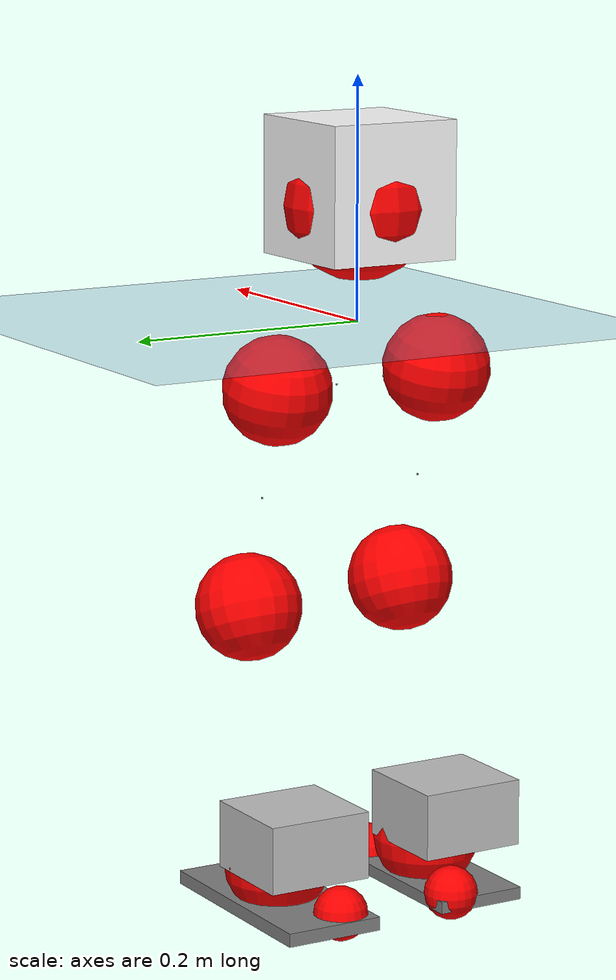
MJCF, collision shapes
<mujoco model="pi_12dof_release_v1">
  <compiler angle="radian" assetdir="assets" balanceinertia="true" inertiafromgeom="false"/>

  <option timestep="0.005" density="1.2" viscosity="2e-05"/>

  <size nkey="1"/>

  <visual>
    <quality shadowsize="8192"/>
    <map shadowclip="0.5"/>
  </visual>

  <default>
    <default class="/">
      <joint armature="0.01" damping="0.01" frictionloss="0.01"/>
      <geom contype="0" conaffinity="0" group="1" solref="-1000 -80"/>
      <site size="0.01 0.005 0.005" group="5"/>
      <general forcelimited="true" biastype="affine" gainprm="20" biasprm="0 -20 -0.5"/>
      <default class="foot">
        <geom size="0.0845 0.036 0.005" type="box" condim="6" group="4" priority="1" friction="0.9 0.2 0.2" solimp="0.015 1 0.005"/>
      </default>
      <default class="reward_collision_sphere">
        <geom group="5" rgba="1 0 0 1"/>
      </default>
    </default>
  </default>

  <asset>
    <texture type="skybox" colorspace="auto" name="//unnamed_texture_0" builtin="gradient" rgb1="0.95 0.95 0.95" rgb2="0.95 0.95 0.95" width="100" height="600"/>
    <texture type="2d" colorspace="auto" name="texplane" builtin="checker" rgb1="0.345 0.575 0.748" rgb2="0.345 0.575 0.748" markrgb="1 1 1" width="512" height="512"/>
    <material name="MatPlane" class="/" texture="texplane" texuniform="true" texrepeat="2 2" specular="0.9"/>
    <mesh name="baselink_1" class="/" file="baselink_1.STL"/>
    <mesh name="r_hip_pitch_link" class="/" file="r_hip_pitch_link.STL"/>
    <mesh name="r_hip_roll_link" class="/" file="r_hip_roll_link.STL"/>
    <mesh name="r_thigh_link" class="/" file="r_thigh_link.STL"/>
    <mesh name="r_calf_link" class="/" file="r_calf_link.STL"/>
    <mesh name="r_ankle_pitch_link" class="/" file="r_ankle_pitch_link.STL"/>
    <mesh name="r_ankle_roll_link" class="/" file="r_ankle_roll_link.STL"/>
    <mesh name="l_hip_pitch_link" class="/" file="l_hip_pitch_link.STL"/>
    <mesh name="l_hip_roll_link" class="/" file="l_hip_roll_link.STL"/>
    <mesh name="l_thigh_link" class="/" file="l_thigh_link.STL"/>
    <mesh name="l_calf_link" class="/" file="l_calf_link.STL"/>
    <mesh name="l_ankle_pitch_link" class="/" file="l_ankle_pitch_link.STL"/>
    <mesh name="l_ankle_roll_link" class="/" file="l_ankle_roll_link.STL"/>
  </asset>

  <worldbody>
    <geom name="floor" class="/" size="100 100 0.125" type="plane" group="0" material="MatPlane"/>
    <light name="toplight_shadow" class="/" pos="0 0 5" dir="0.0990148 0.0990148 -0.990148" type="directional" ambient="0.04 0.04 0.04" diffuse="0.55 0.55 0.55" specular="0.12 0.12 0.12"/>
    <light name="toplight_fill" class="/" pos="0 0 5" dir="0.0990148 0.0990148 -0.990148" type="directional" castshadow="false" ambient="0.04 0.04 0.04" diffuse="0.3 0.3 0.3" specular="0.08 0.08 0.08"/>
    <body name="trunk" pos="-0.00240713 0.000127939 -0.00250641" quat="1 0.000278207 -0.000248652 -0.00048523">
      <inertial pos="0.00423608 0.0022371 0.0557378" quat="0.700042 0.013793 0.0136944 0.713837" mass="3.30336" diaginertia="0.0103029 0.00787281 0.0247894"/>
      <joint name="//unnamed_joint_0" type="free"/>
      <geom name="//unnamed_geom_1" class="/" type="mesh" density="0" rgba="1 1 1 1" mesh="baselink_1"/>
      <geom name="//unnamed_geom_2" class="/" size="0.0563535 0.0563535 0.0563535" pos="0 0 0.11282" type="box" rgba="1 1 1 1"/>
      <geom name="//unnamed_geom_3" class="reward_collision_sphere" size="0.0619889" pos="0 0 0.0987177"/>
      <site name="imu" class="/" pos="-0.000598442 0.0109198 -0.00438168" size="0.0112707"/>
      <camera name="track" class="/" pos="0 -1.93304 0" quat="0.707107 0.707107 0 0" mode="trackcom"/>
      <camera name="ego_camera" class="/" pos="0.0753328 0 0.253846" quat="-0.5 -0.5 0.5 0.5"/>
      <body name="r_hip_pitch_link" pos="0.00124565 -0.0240883 -0.0440955" quat="0.992117 -0.00111124 -0.125312 0.000174474">
        <inertial pos="0.00336695 -0.0546001 -0.000664805" quat="-0.0194179 0.705166 -0.0304075 0.708124" mass="0.527069" diaginertia="0.00011045 8.74151e-05 0.00046406"/>
        <joint name="r_hip_pitch_joint" class="/" pos="0 0 0" axis="-0.00758152 -0.999922 0.00991664" range="-1.79769 1.2743" armature="0.00977159" damping="0.0116246" frictionloss="0.0117664"/>
        <geom name="//unnamed_geom_4" class="/" type="mesh" density="0" rgba="0.75294 0.75294 0.75294 1" mesh="r_hip_pitch_link"/>
        <geom name="//unnamed_geom_5" class="/" size="0.000563535 0.000563535 0.000563535" type="box" rgba="0.75294 0.75294 0.75294 1"/>
        <body name="r_hip_roll_link" pos="0.00262412 -0.0529227 0.0015119" quat="1 7.00543e-06 5.43454e-06 -3.83255e-05">
          <inertial pos="-0.000544334 -0.00135887 -0.0847185" quat="0.706085 -0.0793839 -0.0826408 0.698794" mass="0.551955" diaginertia="0.000347856 0.000231627 0.000683461"/>
          <joint name="r_hip_roll_joint" class="/" pos="0 0 0" axis="-0.999992 -0.00207957 -0.00337475" range="-0.168382 0.476251" armature="0.00979927" damping="0.016404" frictionloss="0.0112809"/>
          <geom name="//unnamed_geom_6" class="/" type="mesh" density="0" rgba="0.75294 0.75294 0.75294 1" mesh="r_hip_roll_link"/>
          <geom name="//unnamed_geom_7" class="/" size="0.000563535 0.000563535 0.000563535" type="box" rgba="0.75294 0.75294 0.75294 1"/>
          <geom name="//unnamed_geom_8" class="reward_collision_sphere" size="0.0450828"/>
          <body name="r_thigh_link" pos="0.00216179 0.00117162 -0.0986931" quat="1 -0.000537961 0.000567732 0.000349666">
            <inertial pos="-8.52256e-05 0.0018972 -0.0656068" quat="0.745661 0.666304 -0.00359355 0.00387472" mass="0.160804" diaginertia="0.000120446 7.86974e-05 0.000322481"/>
            <joint name="r_thigh_joint" class="/" pos="0 0 0" axis="0.00122174 -0.000924915 -0.999999" range="-0.309916 0.632273" armature="0.0102403" damping="0.0154314" frictionloss="0.0126667"/>
            <geom name="//unnamed_geom_9" class="/" type="mesh" density="0" rgba="0.75294 0.75294 0.75294 1" mesh="r_thigh_link"/>
            <geom name="//unnamed_geom_10" class="/" size="0.000563535 0.000563535 0.000563535" type="box" rgba="0.75294 0.75294 0.75294 1"/>
            <body name="r_calf_link" pos="0.00242472 0.000329133 -0.0979985" quat="0.947621 0.000168815 0.319396 -0.000152167">
              <inertial pos="0.00185986 -0.00053891 -0.0973209" quat="0.999984 -0.00316074 0.000104837 0.00471139" mass="1.17111" diaginertia="0.00347116 0.00286926 0.000929319"/>
              <joint name="r_calf_joint" class="/" pos="0 0 0" axis="-0.000694204 -1 0.000344847" stiffness="0.00308981" range="-1.68982 0.63485" armature="0.0103514" damping="0.0186398" frictionloss="0.0116703"/>
              <geom name="//unnamed_geom_11" class="/" type="mesh" density="0" rgba="0.75294 0.75294 0.75294 1" mesh="r_calf_link"/>
              <geom name="//unnamed_geom_12" class="/" size="0.000563535 0.000563535 0.000563535" type="box" rgba="0.75294 0.75294 0.75294 1"/>
              <geom name="//unnamed_geom_13" class="reward_collision_sphere" size="0.0450828"/>
              <body name="r_ankle_pitch_link" pos="0.00099878 0.00192677 -0.198051" quat="0.980005 -8.62141e-05 -0.198971 -0.000158174">
                <inertial pos="0.00688148 0.00273319 -0.000645904" quat="-0.000751939 0.709354 -0.00857957 0.7048" mass="0.249445" diaginertia="0.000303772 0.000175188 0.000647828"/>
                <joint name="r_ankle_pitch_joint" class="/" pos="0 0 0" axis="-0.00532619 -0.999975 -0.00471299" range="-1.2459 0.49771" armature="0.0111776" damping="0.000510722" frictionloss="0.0124338"/>
                <geom name="//unnamed_geom_14" class="/" type="mesh" density="0" rgba="0.75294 0.75294 0.75294 1" mesh="r_ankle_pitch_link"/>
                <geom name="//unnamed_geom_15" class="/" size="0.0439557 0.0450828 0.0281768" type="box" rgba="0.75294 0.75294 0.75294 1"/>
                <body name="r_ankle_roll_link" pos="0.0772358 0.00193412 -0.00298921" quat="1 0.000278769 4.32118e-05 -2.66629e-05">
                  <inertial pos="-0.0230129 -6.87438e-05 -0.021074" quat="0.560419 0.42742 0.43505 0.560334" mass="0.748776" diaginertia="0.00115097 0.000868189 0.00156048"/>
                  <joint name="r_ankle_roll_joint" class="/" pos="0 0 0" axis="-0.999958 -0.00606149 -0.00681197" stiffness="0.00578969" range="-0.127929 0.146648" armature="0.0106931" damping="0" frictionloss="0.0116473"/>
                  <geom name="//unnamed_geom_16" class="/" type="mesh" density="0" rgba="0.75294 0.75294 0.75294 1" mesh="r_ankle_roll_link"/>
                  <geom name="//unnamed_geom_17" class="/" type="mesh" rgba="0.75294 0.75294 0.75294 1" mesh="r_ankle_roll_link"/>
                  <geom name="right_foot" class="foot" size="0.0861996 0.0389151 0.00512589" pos="-0.0512263 0 -0.0620512"/>
                  <geom name="//unnamed_geom_19" class="reward_collision_sphere" size="0.0450828" pos="-0.0502219 0 -0.0282051"/>
                  <geom name="//unnamed_geom_20" class="reward_collision_sphere" size="0.0225414" pos="0.0150666 0.0193304 -0.0564101"/>
                  <geom name="//unnamed_geom_21" class="reward_collision_sphere" size="0.0225414" pos="-0.120533 0.0193304 -0.0564101"/>
                  <site name="right_foot" class="foot" pos="-0.0512263 0 -0.0620512" size="0.0112707"/>
                </body>
              </body>
            </body>
          </body>
        </body>
      </body>
      <body name="l_hip_pitch_link" pos="-0.00059717 0.0211118 -0.0468122" quat="0.992222 0.000492151 -0.12448 -4.52919e-05">
        <inertial pos="0.00359172 0.0508017 -0.00122777" quat="-0.0392573 0.700415 0.0412117 0.711463" mass="0.562356" diaginertia="0.000135111 9.20412e-05 0.000569765"/>
        <joint name="l_hip_pitch_joint" class="/" pos="0 0 0" axis="-0.00539383 0.999945 -0.00903058" range="-1.19112 1.75854" armature="0.01142" damping="0.0250967" frictionloss="0.011416"/>
        <geom name="//unnamed_geom_22" class="/" type="mesh" density="0" rgba="0.75294 0.75294 0.75294 1" mesh="l_hip_pitch_link"/>
        <geom name="//unnamed_geom_23" class="/" size="0.000563535 0.000563535 0.000563535" type="box" rgba="0.75294 0.75294 0.75294 1"/>
        <body name="l_hip_roll_link" pos="0.000393383 0.0550811 -0.000340505" quat="1 9.91457e-05 -0.000246998 -0.000324512">
          <inertial pos="-0.00132535 -0.000483744 -0.0842202" quat="0.706541 -0.0657609 -0.0792956 0.700134" mass="0.561664" diaginertia="0.000348627 0.000246369 0.000753665"/>
          <joint name="l_hip_roll_joint" class="/" pos="0 0 0" axis="-0.999878 -0.0118332 -0.0101883" stiffness="0.0172538" range="-0.520361 0.125502" armature="0.00976651" damping="0.0095715" frictionloss="0.00973162"/>
          <geom name="//unnamed_geom_24" class="/" type="mesh" density="0" rgba="0.75294 0.75294 0.75294 1" mesh="l_hip_roll_link"/>
          <geom name="//unnamed_geom_25" class="/" size="0.000563535 0.000563535 0.000563535" type="box" rgba="0.75294 0.75294 0.75294 1"/>
          <geom name="//unnamed_geom_26" class="reward_collision_sphere" size="0.0450828"/>
          <body name="l_thigh_link" pos="0.000370645 0.000606281 -0.0958611" quat="0.999999 0.000481724 -7.35094e-05 0.000923738">
            <inertial pos="-0.00235405 -0.00333485 -0.0672954" quat="0.674907 0.737816 -0.00451714 -0.0104091" mass="0.166479" diaginertia="0.000128509 8.21405e-05 0.000343131"/>
            <joint name="l_thigh_joint" class="/" pos="0 0 0" axis="0.0146669 0.000208935 -0.999892" stiffness="0.00707478" range="-0.61222 0.322563" armature="0.012464" damping="0.00770684" frictionloss="0.0125617"/>
            <geom name="//unnamed_geom_27" class="/" type="mesh" density="0" rgba="0.75294 0.75294 0.75294 1" mesh="l_thigh_link"/>
            <geom name="//unnamed_geom_28" class="/" size="0.000563535 0.000563535 0.000563535" type="box" rgba="0.75294 0.75294 0.75294 1"/>
            <body name="l_calf_link" pos="0.00194671 -0.00224674 -0.10094" quat="0.947579 0.000762286 0.319521 0.00011599">
              <inertial pos="-0.00150658 0.00423076 -0.0964451" quat="0.999962 0.00594441 -0.00536677 0.00357974" mass="1.16997" diaginertia="0.00365356 0.00299082 0.000973815"/>
              <joint name="l_calf_joint" class="/" pos="0 0 0" axis="0.00927507 0.999955 -0.00220431" range="-0.672731 1.61292" armature="0.0126531" damping="0.00581529" frictionloss="0.0113619"/>
              <geom name="//unnamed_geom_29" class="/" type="mesh" density="0" rgba="0.75294 0.75294 0.75294 1" mesh="l_calf_link"/>
              <geom name="//unnamed_geom_30" class="/" size="0.000563535 0.000563535 0.000563535" type="box" rgba="0.75294 0.75294 0.75294 1"/>
              <geom name="//unnamed_geom_31" class="reward_collision_sphere" size="0.0450828"/>
              <body name="l_ankle_pitch_link" pos="-0.00233315 0.00156551 -0.19522" quat="0.980032 -1.95188e-05 -0.198839 -0.000128773">
                <inertial pos="0.0036228 -0.00108863 -0.000383063" quat="0.0016792 0.707927 0.00314942 0.706276" mass="0.251854" diaginertia="0.000307386 0.000190077 0.000666179"/>
                <joint name="l_ankle_pitch_joint" class="/" pos="0 0 0" axis="-0.00164791 0.999984 0.00544421" range="-0.506913 1.31325" armature="0.011118" damping="0" frictionloss="0.0127405"/>
                <geom name="//unnamed_geom_32" class="/" type="mesh" density="0" rgba="0.75294 0.75294 0.75294 1" mesh="l_ankle_pitch_link"/>
                <geom name="//unnamed_geom_33" class="/" size="0.0439557 0.0450828 0.0281768" type="box" rgba="0.75294 0.75294 0.75294 1"/>
                <body name="l_ankle_roll_link" pos="0.0769351 0.000194581 0.00247854" quat="1 5.98755e-05 -2.44736e-05 2.0138e-05">
                  <inertial pos="-0.0251113 -0.000122928 -0.0193708" quat="0.551776 0.437158 0.433539 0.562566" mass="0.741053" diaginertia="0.00119252 0.000856922 0.00157799"/>
                  <joint name="l_ankle_roll_joint" class="/" pos="0 0 0" axis="-0.999966 0.00431222 -0.00700889" stiffness="0.00301473" range="-0.158387 0.205388" armature="0.00971678" damping="0.0126559" frictionloss="0.00975014"/>
                  <geom name="//unnamed_geom_34" class="/" type="mesh" density="0" rgba="0.75294 0.75294 0.75294 1" mesh="l_ankle_roll_link"/>
                  <geom name="//unnamed_geom_35" class="/" type="mesh" rgba="0.75294 0.75294 0.75294 1" mesh="l_ankle_roll_link"/>
                  <geom name="left_foot" class="foot" size="0.0928446 0.0422059 0.0056469" pos="-0.0512263 0 -0.0620512"/>
                  <geom name="//unnamed_geom_37" class="reward_collision_sphere" size="0.0450828" pos="-0.0502219 0 -0.0282051"/>
                  <geom name="//unnamed_geom_38" class="reward_collision_sphere" size="0.0225414" pos="0.0150666 -0.0193304 -0.0564101"/>
                  <geom name="//unnamed_geom_39" class="reward_collision_sphere" size="0.0225414" pos="-0.120533 -0.0193304 -0.0564101"/>
                  <site name="left_foot" class="foot" pos="-0.0512263 0 -0.0620512" size="0.0112707"/>
                </body>
              </body>
            </body>
          </body>
        </body>
      </body>
    </body>
  </worldbody>

  <contact>
    <pair class="/" geom1="floor" geom2="right_foot" name="//unnamed_contact_1"/>
    <pair class="/" geom1="floor" geom2="left_foot" name="//unnamed_contact_0"/>
  </contact>

  <actuator>
    <general name="r_hip_pitch_joint" class="/" joint="r_hip_pitch_joint" forcerange="-24.5828 24.5828" gainprm="22.1023" biasprm="0 -22.1023 -0.604636"/>
    <general name="r_hip_roll_joint" class="/" joint="r_hip_roll_joint" forcerange="-25.3514 25.3514" gainprm="22.1023" biasprm="0 -22.1023 -0.604636"/>
    <general name="r_thigh_joint" class="/" joint="r_thigh_joint" forcerange="-22.4496 22.4496" gainprm="22.1023" biasprm="0 -22.1023 -0.604636"/>
    <general name="r_calf_joint" class="/" joint="r_calf_joint" forcerange="-21.7484 21.7484" gainprm="22.1023" biasprm="0 -22.1023 -0.604636"/>
    <general name="r_ankle_pitch_joint" class="/" joint="r_ankle_pitch_joint" forcerange="-25.3187 25.3187" gainprm="22.1023" biasprm="0 -22.1023 -0.604636"/>
    <general name="r_ankle_roll_joint" class="/" joint="r_ankle_roll_joint" forcerange="-24.4624 24.4624" gainprm="22.1023" biasprm="0 -22.1023 -0.604636"/>
    <general name="l_hip_pitch_joint" class="/" joint="l_hip_pitch_joint" forcerange="-23.6463 23.6463" gainprm="22.1023" biasprm="0 -22.1023 -0.604636"/>
    <general name="l_hip_roll_joint" class="/" joint="l_hip_roll_joint" forcerange="-21.7118 21.7118" gainprm="22.1023" biasprm="0 -22.1023 -0.604636"/>
    <general name="l_thigh_joint" class="/" joint="l_thigh_joint" forcerange="-22.8393 22.8393" gainprm="22.1023" biasprm="0 -22.1023 -0.604636"/>
    <general name="l_calf_joint" class="/" joint="l_calf_joint" forcerange="-24.3038 24.3038" gainprm="22.1023" biasprm="0 -22.1023 -0.604636"/>
    <general name="l_ankle_pitch_joint" class="/" joint="l_ankle_pitch_joint" forcerange="-25.6827 25.6827" gainprm="22.1023" biasprm="0 -22.1023 -0.604636"/>
    <general name="l_ankle_roll_joint" class="/" joint="l_ankle_roll_joint" forcerange="-24.4576 24.4576" gainprm="22.1023" biasprm="0 -22.1023 -0.604636"/>
  </actuator>

  <sensor>
    <gyro site="imu" name="imu_angular_velocity"/>
    <velocimeter site="imu" name="imu_linear_velocity"/>
    <framelinvel objtype="site" objname="left_foot" name="left_foot_global_linear_velocity"/>
    <framelinvel objtype="site" objname="right_foot" name="right_foot_global_linear_velocity"/>
  </sensor>

  <keyframe>
    <key name="home" qpos="0 0 0.291 1 0 0 0 0.4 0 0 -0.8 0.4 0 -0.4 0 0 0.8 -0.4 0"/>
  </keyframe>
</mujoco>
